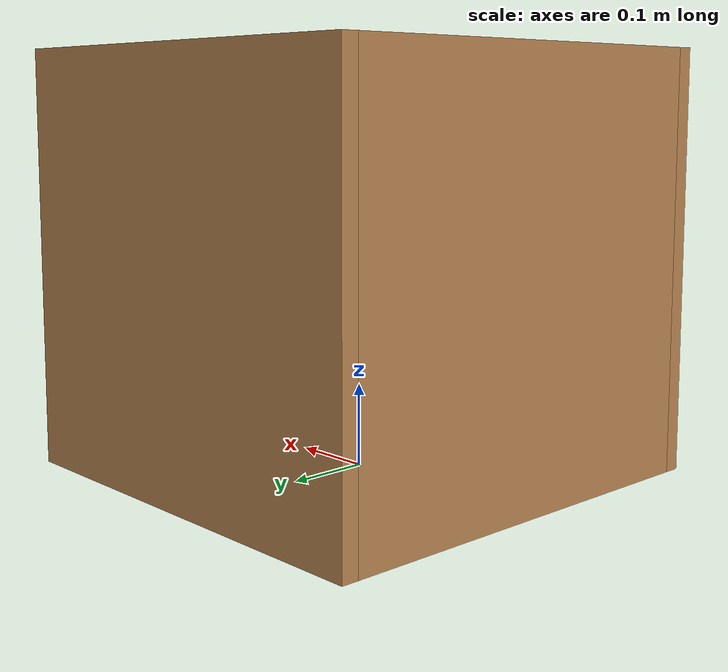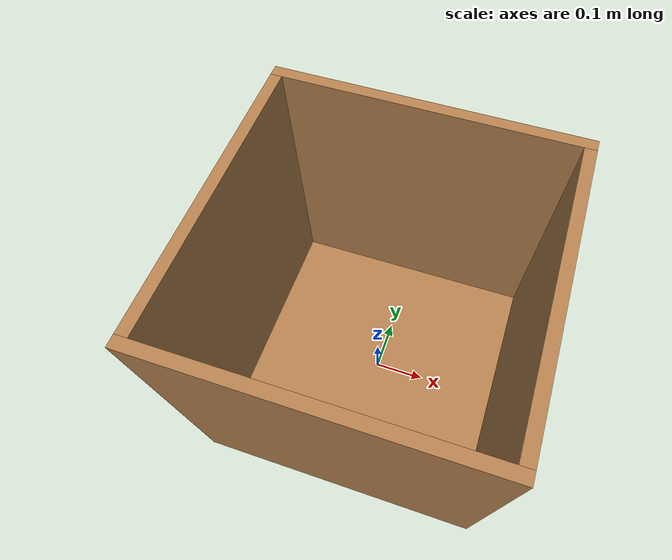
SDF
<?xml version="1.0" ?>
<sdf version='1.4'>
    <model name='*box'>
        <pose>0.0 0.0 0.0 0.0 0.0 0.0</pose>
        <link name='*box_bot'>
            <pose>0.0 0.0 0.01 0.0 0.0 0.0</pose>
            <collision name='collision'>
                <geometry>
                    <box>
                        <size>0.5 0.5 0.02</size>
                    </box>
                </geometry>
            </collision>
            <visual name='visual'>
                <geometry>
                    <box>
                        <size>0.5 0.5 0.02</size>
                    </box>
                </geometry>
                <material>
                    <script>
                        <uri>model://base_materials/wood/scripts/wood.material</uri>
                        <name>base_materials/dark_wood</name>
                    </script>
                </material>
            </visual>
        </link>
        <link name='*box_up'>
            <pose>0.0 0.26 0.25 0.0 0.0 0.0</pose>
            <collision name='collision'>
                <geometry>
                    <box>
                        <size>0.54 0.02 0.5</size>
                    </box>
                </geometry>
            </collision>
            <visual name='visual'>
                <geometry>
                    <box>
                        <size>0.54 0.02 0.5</size>
                    </box>
                </geometry>
                <material>
                    <script>
                        <uri>model://base_materials/wood/scripts/wood.material</uri>
                        <name>base_materials/dark_wood</name>
                    </script>
                </material>
            </visual>
        </link>
        <link name='*box_dowm'>
            <pose>0.0 -0.26 0.25 0.0 0.0 0.0</pose>
            <collision name='collision'>
                <geometry>
                    <box>
                        <size>0.54 0.02 0.5</size>
                    </box>
                </geometry>
            </collision>
            <visual name='visual'>
                <geometry>
                    <box>
                        <size>0.54 0.02 0.5</size>
                    </box>
                </geometry>
                <material>
                    <script>
                        <uri>model://base_materials/wood/scripts/wood.material</uri>
                        <name>base_materials/dark_wood</name>
                    </script>
                </material>
            </visual>
        </link>
        <link name='*box_left'>
            <pose>-0.26 0.0 0.25 0.0 0.0 0.0</pose>
            <collision name='collision'>
                <geometry>
                    <box>
                        <size>0.02 0.5 0.5</size>
                    </box>
                </geometry>
            </collision>
            <visual name='visual'>
                <geometry>
                    <box>
                        <size>0.02 0.5 0.5</size>
                    </box>
                </geometry>
                <material>
                    <script>
                        <uri>model://base_materials/wood/scripts/wood.material</uri>
                        <name>base_materials/dark_wood</name>
                    </script>
                </material>
            </visual>
        </link>
        <link name='*box_right'>
            <pose>0.26 0.0 0.25 0.0 0.0 0.0</pose>
            <collision name='collision'>
                <geometry>
                    <box>
                        <size>0.02 0.5 0.5</size>
                    </box>
                </geometry>
            </collision>
            <visual name='visual'>
                <geometry>
                    <box>
                        <size>0.02 0.5 0.5</size>
                    </box>
                </geometry>
                <material>
                    <script>
                        <uri>model://base_materials/wood/scripts/wood.material</uri>
                        <name>base_materials/dark_wood</name>
                    </script>
                </material>
            </visual>
        </link>
        <static>1</static>
    </model>
</sdf>
